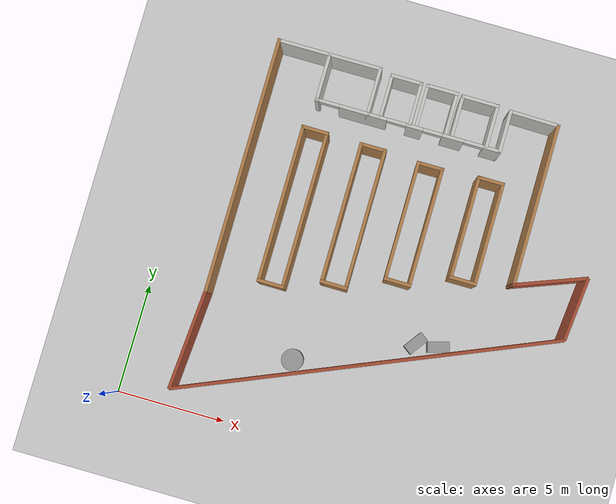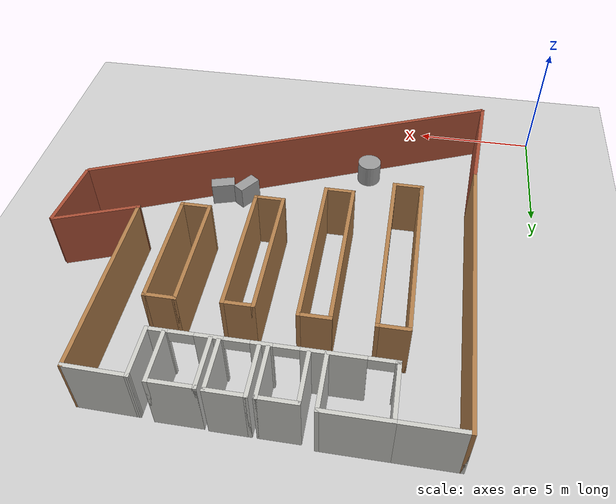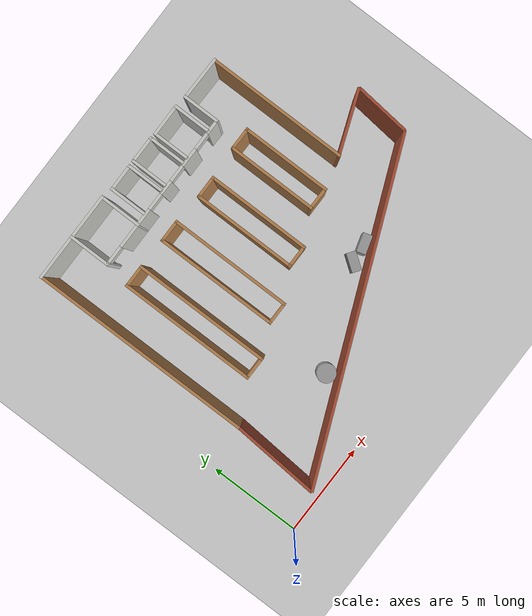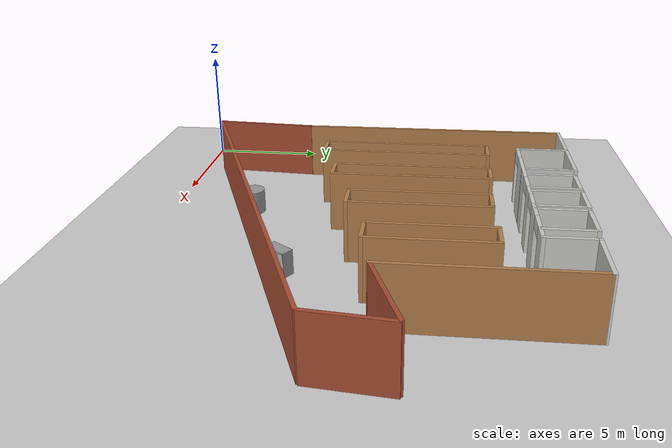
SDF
<sdf version="1.7">
 <world name="default">
  <light name="sun" type="directional">
   <pose>0 0 10 0 -0 0</pose>
   <diffuse>0.8 0.8 0.8 1</diffuse>
   <specular>0.2 0.2 0.2 1</specular>
   <attenuation>
    <range>1000</range>
    <constant>0.9</constant>
    <linear>0.01</linear>
    <quadratic>0.001</quadratic>
   </attenuation>
   <direction>-0.5 0.1 -0.9</direction>
   <spot><inner_angle>0</inner_angle><outer_angle>0</outer_angle><falloff>0</falloff></spot>
  </light>
  <model name="ground_plane">
   <static>1</static>
   <link name="link">
    <collision name="collision">
     <geometry><plane><normal>0 0 1</normal><size>100 100</size></plane></geometry>
     <surface><friction><ode><mu>0.9</mu><mu2>0.9</mu2></ode></friction></surface>
    </collision>
    <visual name="visual">
     <cast_shadows>0</cast_shadows>
     <geometry><plane><normal>0 0 1</normal><size>100 100</size></plane></geometry>
     <material>
      <script><uri>file://media/materials/scripts/gazebo.material</uri><name>Gazebo/Grey</name></script>
     </material>
    </visual>
   </link>
  </model>
  <gravity>0 0 -9.8</gravity>
  <magnetic_field>6e-06 2.3e-05 -4.2e-05</magnetic_field>
  <atmosphere type="adiabatic"/>
  <physics type="ode">
   <max_step_size>0.001</max_step_size>
   <real_time_factor>1</real_time_factor>
   <real_time_update_rate>1000</real_time_update_rate>
  </physics>
  <scene><ambient>0.4 0.4 0.4 1</ambient><background>0.7 0.7 0.7 1</background><shadows>1</shadows></scene>
  <spherical_coordinates>
   <surface_model>EARTH_WGS84</surface_model>
   <latitude_deg>0</latitude_deg>
   <longitude_deg>0</longitude_deg>
   <elevation>0</elevation>
   <heading_deg>0</heading_deg>
  </spherical_coordinates>
  <model name="tepper_lockers">
   <pose>10.68 9.00005 0 0 -0 3.14159</pose>
   <link name="Wall_1">
    <collision name="Wall_1_Collision">
     <geometry><box><size>2 0.15 2.5</size></box></geometry>
     <pose>0 0 1.25 0 -0 0</pose>
    </collision>
    <visual name="Wall_1_Visual">
     <pose>0 0 1.25 0 -0 0</pose>
     <geometry><box><size>2 0.15 2.5</size></box></geometry>
     <material>
      <script><uri>file://media/materials/scripts/gazebo.material</uri><name>Gazebo/CeilingTiled</name></script>
      <ambient>1 1 1 1</ambient>
     </material>
     <meta><layer>0</layer></meta>
    </visual>
    <pose>-2.92407 -6.92436 0 0 -0 -1.5708</pose>
   </link>
   <link name="Wall_11">
    <collision name="Wall_11_Collision">
     <geometry><box><size>4.75 0.15 2.5</size></box></geometry>
     <pose>0 0 1.25 0 -0 0</pose>
    </collision>
    <visual name="Wall_11_Visual">
     <pose>0 0 1.25 0 -0 0</pose>
     <geometry><box><size>4.75 0.15 2.5</size></box></geometry>
     <material>
      <script><uri>file://media/materials/scripts/gazebo.material</uri><name>Gazebo/Wood</name></script>
      <ambient>0.760784 0.662745 0.627451 1</ambient>
     </material>
     <meta><layer>0</layer></meta>
    </visual>
    <pose>-3.46741 -2.32422 0 0 -0 -1.5708</pose>
   </link>
   <link name="Wall_12">
    <collision name="Wall_12_Collision">
     <geometry><box><size>1.25 0.15 2.5</size></box></geometry>
     <pose>0 0 1.25 0 -0 0</pose>
    </collision>
    <visual name="Wall_12_Visual">
     <pose>0 0 1.25 0 -0 0</pose>
     <geometry><box><size>1.25 0.15 2.5</size></box></geometry>
     <material>
      <script><uri>file://media/materials/scripts/gazebo.material</uri><name>Gazebo/Wood</name></script>
      <ambient>1 1 1 1</ambient>
     </material>
     <meta><layer>0</layer></meta>
    </visual>
    <pose>-2.91741 -4.62422 0 0 -0 0</pose>
   </link>
   <link name="Wall_13">
    <collision name="Wall_13_Collision">
     <geometry><box><size>4.75 0.15 2.5</size></box></geometry>
     <pose>0 0 1.25 0 -0 0</pose>
    </collision>
    <visual name="Wall_13_Visual">
     <pose>0 0 1.25 0 -0 0</pose>
     <geometry><box><size>4.75 0.15 2.5</size></box></geometry>
     <material>
      <script><uri>file://media/materials/scripts/gazebo.material</uri><name>Gazebo/Wood</name></script>
      <ambient>0.760784 0.662745 0.627451 1</ambient>
     </material>
     <meta><layer>0</layer></meta>
    </visual>
    <pose>-2.36741 -2.32422 0 0 -0 1.5708</pose>
   </link>
   <link name="Wall_14">
    <collision name="Wall_14_Collision">
     <geometry><box><size>1.25 0.15 2.5</size></box></geometry>
     <pose>0 0 1.25 0 -0 0</pose>
    </collision>
    <visual name="Wall_14_Visual">
     <pose>0 0 1.25 0 -0 0</pose>
     <geometry><box><size>1.25 0.15 2.5</size></box></geometry>
     <material>
      <script><uri>file://media/materials/scripts/gazebo.material</uri><name>Gazebo/Wood</name></script>
      <ambient>0.760784 0.662745 0.627451 1</ambient>
     </material>
     <meta><layer>0</layer></meta>
    </visual>
    <pose>-2.91741 -0.024215 0 0 -0 3.14159</pose>
   </link>
   <link name="Wall_16">
    <collision name="Wall_16_Collision">
     <geometry><box><size>5.5 0.15 2.5</size></box></geometry>
     <pose>0 0 1.25 0 -0 0</pose>
    </collision>
    <visual name="Wall_16_Visual">
     <pose>0 0 1.25 0 -0 0</pose>
     <geometry><box><size>5.5 0.15 2.5</size></box></geometry>
     <material>
      <script><uri>file://media/materials/scripts/gazebo.material</uri><name>Gazebo/Wood</name></script>
      <ambient>0.996078 0.47451 0.0196078 1</ambient>
     </material>
     <meta><layer>0</layer></meta>
    </visual>
    <pose>-0.703981 -1.8422 0 0 -0 -1.5708</pose>
   </link>
   <link name="Wall_17">
    <collision name="Wall_17_Collision">
     <geometry><box><size>1.25 0.15 2.5</size></box></geometry>
     <pose>0 0 1.25 0 -0 0</pose>
    </collision>
    <visual name="Wall_17_Visual">
     <pose>0 0 1.25 0 -0 0</pose>
     <geometry><box><size>1.25 0.15 2.5</size></box></geometry>
     <material>
      <script><uri>file://media/materials/scripts/gazebo.material</uri><name>Gazebo/Wood</name></script>
      <ambient>0.996078 0.47451 0.0196078 1</ambient>
     </material>
     <meta><layer>0</layer></meta>
    </visual>
    <pose>-0.153981 -4.5172 0 0 -0 0</pose>
   </link>
   <link name="Wall_18">
    <collision name="Wall_18_Collision">
     <geometry><box><size>5.5 0.15 2.5</size></box></geometry>
     <pose>0 0 1.25 0 -0 0</pose>
    </collision>
    <visual name="Wall_18_Visual">
     <pose>0 0 1.25 0 -0 0</pose>
     <geometry><box><size>5.5 0.15 2.5</size></box></geometry>
     <material>
      <script><uri>file://media/materials/scripts/gazebo.material</uri><name>Gazebo/Wood</name></script>
      <ambient>0.996078 0.47451 0.0196078 1</ambient>
     </material>
     <meta><layer>0</layer></meta>
    </visual>
    <pose>0.396019 -1.8422 0 0 -0 1.5708</pose>
   </link>
   <link name="Wall_19">
    <collision name="Wall_19_Collision">
     <geometry><box><size>1.25 0.15 2.5</size></box></geometry>
     <pose>0 0 1.25 0 -0 0</pose>
    </collision>
    <visual name="Wall_19_Visual">
     <pose>0 0 1.25 0 -0 0</pose>
     <geometry><box><size>1.25 0.15 2.5</size></box></geometry>
     <material>
      <script><uri>file://media/materials/scripts/gazebo.material</uri><name>Gazebo/Wood</name></script>
      <ambient>0.996078 0.47451 0.0196078 1</ambient>
     </material>
     <meta><layer>0</layer></meta>
    </visual>
    <pose>-0.153981 0.832798 0 0 -0 3.14159</pose>
   </link>
   <link name="Wall_2">
    <collision name="Wall_2_Collision">
     <geometry><box><size>2.3526 0.15 2.5</size></box></geometry>
     <pose>0 0 1.25 0 -0 0</pose>
    </collision>
    <visual name="Wall_2_Visual">
     <pose>0 0 1.25 0 -0 0</pose>
     <geometry><box><size>2.3526 0.15 2.5</size></box></geometry>
     <material>
      <script><uri>file://media/materials/scripts/gazebo.material</uri><name>Gazebo/CeilingTiled</name></script>
      <ambient>1 1 1 1</ambient>
     </material>
     <meta><layer>0</layer></meta>
    </visual>
    <pose>-4.02523 -7.8323 0 0 -0 3.1261</pose>
   </link>
   <link name="Wall_28">
    <collision name="Wall_28_Collision">
     <geometry><box><size>7.25 0.15 2.5</size></box></geometry>
     <pose>0 0 1.25 0 -0 0</pose>
    </collision>
    <visual name="Wall_28_Visual">
     <pose>0 0 1.25 0 -0 0</pose>
     <geometry><box><size>7.25 0.15 2.5</size></box></geometry>
     <material>
      <script><uri>file://media/materials/scripts/gazebo.material</uri><name>Gazebo/Wood</name></script>
      <ambient>1 1 1 1</ambient>
     </material>
     <meta><layer>0</layer></meta>
    </visual>
    <pose>4.66547 -1.10908 0 0 -0 1.5708</pose>
   </link>
   <link name="Wall_29">
    <collision name="Wall_29_Collision">
     <geometry><box><size>1.25 0.15 2.5</size></box></geometry>
     <pose>0 0 1.25 0 -0 0</pose>
    </collision>
    <visual name="Wall_29_Visual">
     <pose>0 0 1.25 0 -0 0</pose>
     <geometry><box><size>1.25 0.15 2.5</size></box></geometry>
     <material>
      <script><uri>file://media/materials/scripts/gazebo.material</uri><name>Gazebo/Wood</name></script>
      <ambient>1 1 1 1</ambient>
     </material>
     <meta><layer>0</layer></meta>
    </visual>
    <pose>5.21547 2.44092 0 0 -0 0</pose>
   </link>
   <link name="Wall_3">
    <collision name="Wall_3_Collision">
     <geometry><box><size>7.5 0.15 2.5</size></box></geometry>
     <pose>0 0 1.25 0 -0 0</pose>
    </collision>
    <visual name="Wall_3_Visual">
     <pose>0 0 1.25 0 -0 0</pose>
     <geometry><box><size>7.5 0.15 2.5</size></box></geometry>
     <material>
      <script><uri>file://media/materials/scripts/gazebo.material</uri><name>Gazebo/Wood</name></script>
      <ambient>1 1 1 1</ambient>
     </material>
     <meta><layer>0</layer></meta>
    </visual>
    <pose>-5.1264 -4.14025 0 0 -0 1.5708</pose>
   </link>
   <link name="Wall_32">
    <collision name="Wall_32_Collision">
     <geometry><box><size>7.25 0.15 2.5</size></box></geometry>
     <pose>0 0 1.25 0 -0 0</pose>
    </collision>
    <visual name="Wall_32_Visual">
     <pose>0 0 1.25 0 -0 0</pose>
     <geometry><box><size>7.25 0.15 2.5</size></box></geometry>
     <material>
      <script><uri>file://media/materials/scripts/gazebo.material</uri><name>Gazebo/Wood</name></script>
      <ambient>1 1 1 1</ambient>
     </material>
     <meta><layer>0</layer></meta>
    </visual>
    <pose>5.76547 -1.10908 0 0 -0 -1.5708</pose>
   </link>
   <link name="Wall_33">
    <collision name="Wall_33_Collision">
     <geometry><box><size>1.25 0.15 2.5</size></box></geometry>
     <pose>0 0 1.25 0 -0 0</pose>
    </collision>
    <visual name="Wall_33_Visual">
     <pose>0 0 1.25 0 -0 0</pose>
     <geometry><box><size>1.25 0.15 2.5</size></box></geometry>
     <material>
      <script><uri>file://media/materials/scripts/gazebo.material</uri><name>Gazebo/Wood</name></script>
      <ambient>1 1 1 1</ambient>
     </material>
     <meta><layer>0</layer></meta>
    </visual>
    <pose>5.21547 -4.65908 0 0 -0 3.14159</pose>
   </link>
   <link name="Wall_35">
    <collision name="Wall_35_Collision">
     <geometry><box><size>1.25 0.15 2.5</size></box></geometry>
     <pose>0 0 1.25 0 -0 0</pose>
    </collision>
    <visual name="Wall_35_Visual">
     <pose>0 0 1.25 0 -0 0</pose>
     <geometry><box><size>1.25 0.15 2.5</size></box></geometry>
     <material>
      <script><uri>file://media/materials/scripts/gazebo.material</uri><name>Gazebo/Wood</name></script>
      <ambient>0.435294 0.796078 0.67451 1</ambient>
     </material>
     <meta><layer>0</layer></meta>
    </visual>
    <pose>2.52387 -4.6241 0 0 -0 3.14159</pose>
   </link>
   <link name="Wall_36">
    <collision name="Wall_36_Collision">
     <geometry><box><size>6.5 0.15 2.5</size></box></geometry>
     <pose>0 0 1.25 0 -0 0</pose>
    </collision>
    <visual name="Wall_36_Visual">
     <pose>0 0 1.25 0 -0 0</pose>
     <geometry><box><size>6.5 0.15 2.5</size></box></geometry>
     <material>
      <script><uri>file://media/materials/scripts/gazebo.material</uri><name>Gazebo/Wood</name></script>
      <ambient>0.435294 0.796078 0.67451 1</ambient>
     </material>
     <meta><layer>0</layer></meta>
    </visual>
    <pose>1.97387 -1.4491 0 0 -0 1.5708</pose>
   </link>
   <link name="Wall_37">
    <collision name="Wall_37_Collision">
     <geometry><box><size>1.25 0.15 2.5</size></box></geometry>
     <pose>0 0 1.25 0 -0 0</pose>
    </collision>
    <visual name="Wall_37_Visual">
     <pose>0 0 1.25 0 -0 0</pose>
     <geometry><box><size>1.25 0.15 2.5</size></box></geometry>
     <material>
      <script><uri>file://media/materials/scripts/gazebo.material</uri><name>Gazebo/Wood</name></script>
      <ambient>0.435294 0.796078 0.67451 1</ambient>
     </material>
     <meta><layer>0</layer></meta>
    </visual>
    <pose>2.52387 1.7259 0 0 -0 0</pose>
   </link>
   <link name="Wall_38">
    <collision name="Wall_38_Collision">
     <geometry><box><size>6.5 0.15 2.5</size></box></geometry>
     <pose>0 0 1.25 0 -0 0</pose>
    </collision>
    <visual name="Wall_38_Visual">
     <pose>0 0 1.25 0 -0 0</pose>
     <geometry><box><size>6.5 0.15 2.5</size></box></geometry>
     <material>
      <script><uri>file://media/materials/scripts/gazebo.material</uri><name>Gazebo/Wood</name></script>
      <ambient>0.435294 0.796078 0.67451 1</ambient>
     </material>
     <meta><layer>0</layer></meta>
    </visual>
    <pose>3.07387 -1.4491 0 0 -0 -1.5708</pose>
   </link>
   <link name="Wall_48">
    <collision name="Wall_48_Collision">
     <geometry><box><size>2.25 0.15 2.5</size></box></geometry>
     <pose>0 0 1.25 0 -0 0</pose>
    </collision>
    <visual name="Wall_48_Visual">
     <pose>0 0 1.25 0 -0 0</pose>
     <geometry><box><size>2.25 0.15 2.5</size></box></geometry>
     <material>
      <script><uri>file://media/materials/scripts/gazebo.material</uri><name>Gazebo/CeilingTiled</name></script>
      <ambient>1 1 1 1</ambient>
     </material>
     <meta><layer>0</layer></meta>
    </visual>
    <pose>5.52593 -7.04936 0 0 -0 -1.5708</pose>
   </link>
   <link name="Wall_49">
    <collision name="Wall_49_Collision">
     <geometry><box><size>2.5 0.15 2.5</size></box></geometry>
     <pose>0 0 1.25 0 -0 0</pose>
    </collision>
    <visual name="Wall_49_Visual">
     <pose>0 0 1.25 0 -0 0</pose>
     <geometry><box><size>2.5 0.15 2.5</size></box></geometry>
     <material>
      <script><uri>file://media/materials/scripts/gazebo.material</uri><name>Gazebo/CeilingTiled</name></script>
      <ambient>1 1 1 1</ambient>
     </material>
     <meta><layer>0</layer></meta>
    </visual>
    <pose>6.70093 -8.09936 0 0 -0 0</pose>
   </link>
   <link name="Wall_50">
    <collision name="Wall_50_Collision">
     <geometry><box><size>11.75 0.15 2.5</size></box></geometry>
     <pose>0 0 1.25 0 -0 0</pose>
    </collision>
    <visual name="Wall_50_Visual">
     <pose>0 0 1.25 0 -0 0</pose>
     <geometry><box><size>11.75 0.15 2.5</size></box></geometry>
     <material>
      <script><uri>file://media/materials/scripts/gazebo.material</uri><name>Gazebo/Wood</name></script>
      <ambient>1 1 1 1</ambient>
     </material>
     <meta><layer>0</layer></meta>
    </visual>
    <pose>7.87593 -2.29936 0 0 -0 1.5708</pose>
   </link>
   <link name="Wall_52">
    <collision name="Wall_52_Collision">
     <geometry><box><size>2 0.15 2.5</size></box></geometry>
     <pose>0 0 1.25 0 -0 0</pose>
    </collision>
    <visual name="Wall_52_Visual">
     <pose>0 0 1.25 0 -0 0</pose>
     <geometry><box><size>2 0.15 2.5</size></box></geometry>
     <material>
      <script><uri>file://media/materials/scripts/gazebo.material</uri><name>Gazebo/CeilingTiled</name></script>
      <ambient>0.760784 0.662745 0.627451 1</ambient>
     </material>
     <meta><layer>0</layer></meta>
    </visual>
    <pose>-2.29829 -7.00102 0 0 -0 1.5708</pose>
   </link>
   <link name="Wall_54">
    <collision name="Wall_54_Collision">
     <geometry><box><size>1.75 0.15 2.5</size></box></geometry>
     <pose>0 0 1.25 0 -0 0</pose>
    </collision>
    <visual name="Wall_54_Visual">
     <pose>0 0 1.25 0 -0 0</pose>
     <geometry><box><size>1.75 0.15 2.5</size></box></geometry>
     <material>
      <script><uri>file://media/materials/scripts/gazebo.material</uri><name>Gazebo/CeilingTiled</name></script>
      <ambient>0.760784 0.662745 0.627451 1</ambient>
     </material>
     <meta><layer>0</layer></meta>
    </visual>
    <pose>-1.49829 -7.92602 0 0 -0 0</pose>
   </link>
   <link name="Wall_55">
    <collision name="Wall_55_Collision">
     <geometry><box><size>2 0.15 2.5</size></box></geometry>
     <pose>0 0 1.25 0 -0 0</pose>
    </collision>
    <visual name="Wall_55_Visual">
     <pose>0 0 1.25 0 -0 0</pose>
     <geometry><box><size>2 0.15 2.5</size></box></geometry>
     <material>
      <script><uri>file://media/materials/scripts/gazebo.material</uri><name>Gazebo/CeilingTiled</name></script>
      <ambient>0.760784 0.662745 0.627451 1</ambient>
     </material>
     <meta><layer>0</layer></meta>
    </visual>
    <pose>-0.698288 -7.00102 0 0 -0 1.5708</pose>
   </link>
   <link name="Wall_58">
    <collision name="Wall_58_Collision">
     <geometry><box><size>2 0.15 2.5</size></box></geometry>
     <pose>0 0 1.25 0 -0 0</pose>
    </collision>
    <visual name="Wall_58_Visual">
     <pose>0 0 1.25 0 -0 0</pose>
     <geometry><box><size>2 0.15 2.5</size></box></geometry>
     <material>
      <script><uri>file://media/materials/scripts/gazebo.material</uri><name>Gazebo/CeilingTiled</name></script>
      <ambient>0.996078 0.47451 0.0196078 1</ambient>
     </material>
     <meta><layer>0</layer></meta>
    </visual>
    <pose>-0.407929 -7.03628 0 0 -0 -1.5708</pose>
   </link>
   <link name="Wall_63">
    <collision name="Wall_63_Collision">
     <geometry><box><size>2 0.15 2.5</size></box></geometry>
     <pose>0 0 1.25 0 -0 0</pose>
    </collision>
    <visual name="Wall_63_Visual">
     <pose>0 0 1.25 0 -0 0</pose>
     <geometry><box><size>2 0.15 2.5</size></box></geometry>
     <material>
      <script><uri>file://media/materials/scripts/gazebo.material</uri><name>Gazebo/CeilingTiled</name></script>
      <ambient>0.435294 0.796078 0.67451 1</ambient>
     </material>
     <meta><layer>0</layer></meta>
    </visual>
    <pose>1.24046 -7.03628 0 0 -0 -1.5708</pose>
   </link>
   <link name="Wall_64">
    <collision name="Wall_64_Collision">
     <geometry><box><size>1.5 0.15 2.5</size></box></geometry>
     <pose>0 0 1.25 0 -0 0</pose>
    </collision>
    <visual name="Wall_64_Visual">
     <pose>0 0 1.25 0 -0 0</pose>
     <geometry><box><size>1.5 0.15 2.5</size></box></geometry>
     <material>
      <script><uri>file://media/materials/scripts/gazebo.material</uri><name>Gazebo/CeilingTiled</name></script>
      <ambient>0.435294 0.796078 0.67451 1</ambient>
     </material>
     <meta><layer>0</layer></meta>
    </visual>
    <pose>1.91546 -7.96128 0 0 -0 0</pose>
   </link>
   <link name="Wall_65">
    <collision name="Wall_65_Collision">
     <geometry><box><size>2 0.15 2.5</size></box></geometry>
     <pose>0 0 1.25 0 -0 0</pose>
    </collision>
    <visual name="Wall_65_Visual">
     <pose>0 0 1.25 0 -0 0</pose>
     <geometry><box><size>2 0.15 2.5</size></box></geometry>
     <material>
      <script><uri>file://media/materials/scripts/gazebo.material</uri><name>Gazebo/CeilingTiled</name></script>
      <ambient>0.435294 0.796078 0.67451 1</ambient>
     </material>
     <meta><layer>0</layer></meta>
    </visual>
    <pose>2.59046 -7.03628 0 0 -0 1.5708</pose>
   </link>
   <link name="Wall_67">
    <collision name="Wall_67_Collision">
     <geometry><box><size>1.5 0.15 2.5</size></box></geometry>
     <pose>0 0 1.25 0 -0 0</pose>
    </collision>
    <visual name="Wall_67_Visual">
     <pose>0 0 1.25 0 -0 0</pose>
     <geometry><box><size>1.5 0.15 2.5</size></box></geometry>
     <material>
      <script><uri>file://media/materials/scripts/gazebo.material</uri><name>Gazebo/CeilingTiled</name></script>
      <ambient>0.996078 0.47451 0.0196078 1</ambient>
     </material>
     <meta><layer>0</layer></meta>
    </visual>
    <pose>0.267071 -7.96128 0 0 -0 0</pose>
   </link>
   <link name="Wall_68">
    <collision name="Wall_68_Collision">
     <geometry><box><size>2 0.15 2.5</size></box></geometry>
     <pose>0 0 1.25 0 -0 0</pose>
    </collision>
    <visual name="Wall_68_Visual">
     <pose>0 0 1.25 0 -0 0</pose>
     <geometry><box><size>2 0.15 2.5</size></box></geometry>
     <material>
      <script><uri>file://media/materials/scripts/gazebo.material</uri><name>Gazebo/CeilingTiled</name></script>
      <ambient>0.996078 0.47451 0.0196078 1</ambient>
     </material>
     <meta><layer>0</layer></meta>
    </visual>
    <pose>0.942071 -7.03628 0 0 -0 1.5708</pose>
   </link>
   <link name="Wall_7">
    <collision name="Wall_7_Collision">
     <geometry><box><size>17.4995 0.15 2.5</size></box></geometry>
     <pose>0 0 1.25 0 -0 0</pose>
    </collision>
    <visual name="Wall_7_Visual">
     <pose>0 0 1.25 0 -0 0</pose>
     <geometry><box><size>17.4995 0.15 2.5</size></box></geometry>
     <material>
      <script><uri>file://media/materials/scripts/gazebo.material</uri><name>Gazebo/Bricks</name></script>
      <ambient>1 1 1 1</ambient>
     </material>
     <meta><layer>0</layer></meta>
    </visual>
    <pose>0.145826 4.69803 0 0 -0 0.399993</pose>
   </link>
   <link name="Wall_70">
    <collision name="Wall_70_Collision">
     <geometry><box><size>2.5 0.15 2.5</size></box></geometry>
     <pose>0 0 1.25 0 -0 0</pose>
    </collision>
    <visual name="Wall_70_Visual">
     <pose>0 0 1.25 0 -0 0</pose>
     <geometry><box><size>2.5 0.15 2.5</size></box></geometry>
     <material>
      <script><uri>file://media/materials/scripts/gazebo.material</uri><name>Gazebo/CeilingTiled</name></script>
      <ambient>1 1 1 1</ambient>
     </material>
     <meta><layer>0</layer></meta>
    </visual>
    <pose>4.35093 -8.09936 0 0 -0 3.14159</pose>
   </link>
   <link name="Wall_71">
    <collision name="Wall_71_Collision">
     <geometry><box><size>2.25 0.15 2.5</size></box></geometry>
     <pose>0 0 1.25 0 -0 0</pose>
    </collision>
    <visual name="Wall_71_Visual">
     <pose>0 0 1.25 0 -0 0</pose>
     <geometry><box><size>2.25 0.15 2.5</size></box></geometry>
     <material>
      <script><uri>file://media/materials/scripts/gazebo.material</uri><name>Gazebo/CeilingTiled</name></script>
      <ambient>1 1 1 1</ambient>
     </material>
     <meta><layer>0</layer></meta>
    </visual>
    <pose>3.17593 -7.04936 0 0 -0 1.5708</pose>
   </link>
   <link name="Wall_73">
    <pose>1.30093 -5.99936 0 0 -0 0</pose>
    <visual name="Wall_73_Visual_0">
     <pose>-3.88746 0 1.25 0 -0 0</pose>
     <geometry><box><size>0.825085 0.15 2.5</size></box></geometry>
     <material>
      <script><uri>file://media/materials/scripts/gazebo.material</uri><name>Gazebo/CeilingTiled</name></script>
      <ambient>1 1 1 1</ambient>
     </material>
     <meta><layer>0</layer></meta>
    </visual>
    <collision name="Wall_73_Collision_0">
     <geometry><box><size>0.825085 0.15 2.5</size></box></geometry>
     <pose>-3.88746 0 1.25 0 -0 0</pose>
    </collision>
    <visual name="Wall_73_Visual_1">
     <pose>-2.0769 0 1.25 0 -0 0</pose>
     <geometry><box><size>0.99603 0.15 2.5</size></box></geometry>
     <material>
      <script><uri>file://media/materials/scripts/gazebo.material</uri><name>Gazebo/CeilingTiled</name></script>
      <ambient>1 1 1 1</ambient>
     </material>
     <meta><layer>0</layer></meta>
    </visual>
    <collision name="Wall_73_Collision_1">
     <geometry><box><size>0.99603 0.15 2.5</size></box></geometry>
     <pose>-2.0769 0 1.25 0 -0 0</pose>
    </collision>
    <visual name="Wall_73_Visual_2">
     <pose>-0.298554 0 1.25 0 -0 0</pose>
     <geometry><box><size>0.760661 0.15 2.5</size></box></geometry>
     <material>
      <script><uri>file://media/materials/scripts/gazebo.material</uri><name>Gazebo/CeilingTiled</name></script>
      <ambient>1 1 1 1</ambient>
     </material>
     <meta><layer>0</layer></meta>
    </visual>
    <collision name="Wall_73_Collision_2">
     <geometry><box><size>0.760661 0.15 2.5</size></box></geometry>
     <pose>-0.298554 0 1.25 0 -0 0</pose>
    </collision>
    <visual name="Wall_73_Visual_3">
     <pose>2.08783 0 1.25 0 -0 0</pose>
     <geometry><box><size>2.21211 0.15 2.5</size></box></geometry>
     <material>
      <script><uri>file://media/materials/scripts/gazebo.material</uri><name>Gazebo/CeilingTiled</name></script>
      <ambient>1 1 1 1</ambient>
     </material>
     <meta><layer>0</layer></meta>
    </visual>
    <collision name="Wall_73_Collision_3">
     <geometry><box><size>2.21211 0.15 2.5</size></box></geometry>
     <pose>2.08783 0 1.25 0 -0 0</pose>
    </collision>
    <visual name="Wall_73_Visual_4">
     <pose>4.19694 0 1.25 0 -0 0</pose>
     <geometry><box><size>0.206118 0.15 2.5</size></box></geometry>
     <material>
      <script><uri>file://media/materials/scripts/gazebo.material</uri><name>Gazebo/CeilingTiled</name></script>
      <ambient>1 1 1 1</ambient>
     </material>
     <meta><layer>0</layer></meta>
    </visual>
    <collision name="Wall_73_Collision_4">
     <geometry><box><size>0.206118 0.15 2.5</size></box></geometry>
     <pose>4.19694 0 1.25 0 -0 0</pose>
    </collision>
    <visual name="Wall_73_Visual_5">
     <pose>-3.02492 0 2.25 0 -0 0</pose>
     <geometry><box><size>0.9 0.15 0.5</size></box></geometry>
     <material>
      <script><uri>file://media/materials/scripts/gazebo.material</uri><name>Gazebo/CeilingTiled</name></script>
      <ambient>1 1 1 1</ambient>
     </material>
     <meta><layer>0</layer></meta>
    </visual>
    <collision name="Wall_73_Collision_5">
     <geometry><box><size>0.9 0.15 0.5</size></box></geometry>
     <pose>-3.02492 0 2.25 0 -0 0</pose>
    </collision>
    <visual name="Wall_73_Visual_6">
     <pose>-1.12888 0 2.25 0 -0 0</pose>
     <geometry><box><size>0.9 0.15 0.5</size></box></geometry>
     <material>
      <script><uri>file://media/materials/scripts/gazebo.material</uri><name>Gazebo/CeilingTiled</name></script>
      <ambient>1 1 1 1</ambient>
     </material>
     <meta><layer>0</layer></meta>
    </visual>
    <collision name="Wall_73_Collision_6">
     <geometry><box><size>0.9 0.15 0.5</size></box></geometry>
     <pose>-1.12888 0 2.25 0 -0 0</pose>
    </collision>
    <visual name="Wall_73_Visual_7">
     <pose>0.531777 0 2.25 0 -0 0</pose>
     <geometry><box><size>0.9 0.15 0.5</size></box></geometry>
     <material>
      <script><uri>file://media/materials/scripts/gazebo.material</uri><name>Gazebo/CeilingTiled</name></script>
      <ambient>1 1 1 1</ambient>
     </material>
     <meta><layer>0</layer></meta>
    </visual>
    <collision name="Wall_73_Collision_7">
     <geometry><box><size>0.9 0.15 0.5</size></box></geometry>
     <pose>0.531777 0 2.25 0 -0 0</pose>
    </collision>
    <visual name="Wall_73_Visual_8">
     <pose>3.64388 0 2.25 0 -0 0</pose>
     <geometry><box><size>0.9 0.15 0.5</size></box></geometry>
     <material>
      <script><uri>file://media/materials/scripts/gazebo.material</uri><name>Gazebo/CeilingTiled</name></script>
      <ambient>1 1 1 1</ambient>
     </material>
     <meta><layer>0</layer></meta>
    </visual>
    <collision name="Wall_73_Collision_8">
     <geometry><box><size>0.9 0.15 0.5</size></box></geometry>
     <pose>3.64388 0 2.25 0 -0 0</pose>
    </collision>
   </link>
   <link name="Wall_9">
    <collision name="Wall_9_Collision">
     <geometry><box><size>3.37321 0.15 2.5</size></box></geometry>
     <pose>0 0 1.25 0 -0 0</pose>
    </collision>
    <visual name="Wall_9_Visual">
     <pose>0 0 1.25 0 -0 0</pose>
     <geometry><box><size>3.37321 0.15 2.5</size></box></geometry>
     <material>
      <script><uri>file://media/materials/scripts/gazebo.material</uri><name>Gazebo/Bricks</name></script>
      <ambient>1 1 1 1</ambient>
     </material>
     <meta><layer>0</layer></meta>
    </visual>
    <pose>-6.63183 -1.04053 0 0 -0 -2.77658</pose>
   </link>
   <link name="Wall_lower_left_closure">
    <collision name="Wall_lower_left_closure_Collision">
     <geometry><box><size>4.54158 0.15 2.5</size></box></geometry>
     <pose>0 0 1.25 0 -0 0</pose>
    </collision>
    <visual name="Wall_lower_left_closure_Visual">
     <pose>0 0 1.25 0 -0 0</pose>
     <geometry><box><size>4.54158 0.15 2.5</size></box></geometry>
     <material>
      <script><uri>file://media/materials/scripts/gazebo.material</uri><name>Gazebo/Bricks</name></script>
      <ambient>1 1 1 1</ambient>
     </material>
     <meta><layer>0</layer></meta>
    </visual>
    <pose>8.040406 5.840463 0 0 -0 1.498292</pose>
   </link>
   <link name="Wall_lower_right_closure">
    <collision name="Wall_lower_right_closure_Collision">
     <geometry><box><size>2.94806 0.15 2.5</size></box></geometry>
     <pose>0 0 1.25 0 -0 0</pose>
    </collision>
    <visual name="Wall_lower_right_closure_Visual">
     <pose>0 0 1.25 0 -0 0</pose>
     <geometry><box><size>2.94806 0.15 2.5</size></box></geometry>
     <material>
      <script><uri>file://media/materials/scripts/gazebo.material</uri><name>Gazebo/Bricks</name></script>
      <ambient>1 1 1 1</ambient>
     </material>
     <meta><layer>0</layer></meta>
    </visual>
    <pose>-8.060286 -0.175905 0 0 -0 1.470880</pose>
   </link>
   <static>1</static>
  </model>
  <model name="unit_cylinder">
   <pose>7.26381 3.57655 0.499993 -3e-06 -1e-06 1.1e-05</pose>
   <link name="link">
    <inertial>
     <mass>1</mass>
     <inertia><ixx>0.145833</ixx><ixy>0</ixy><ixz>0</ixz><iyy>0.145833</iyy><iyz>0</iyz><izz>0.125</izz></inertia>
    </inertial>
    <collision name="collision">
     <geometry><cylinder><radius>0.5</radius><length>1</length></cylinder></geometry>
    </collision>
    <visual name="visual">
     <geometry><cylinder><radius>0.5</radius><length>1</length></cylinder></geometry>
     <material>
      <script><name>Gazebo/Grey</name><uri>file://media/materials/scripts/gazebo.material</uri></script>
     </material>
    </visual>
   </link>
  </model>
  <model name="half_box">
   <link name="link">
    <inertial>
     <mass>1</mass>
     <inertia>
      <ixx>0.166667</ixx>
      <ixy>0</ixy>
      <ixz>0</ixz>
      <iyy>0.166667</iyy>
      <iyz>0</iyz>
      <izz>0.166667</izz>
     </inertia>
    </inertial>
    <visual name="visual">
     <geometry><box><size>1 0.5 1</size></box></geometry>
     <material>
      <script><name>Gazebo/Grey</name><uri>file://media/materials/scripts/gazebo.material</uri></script>
      <shader type="pixel"><normal_map>__default__</normal_map></shader>
      <ambient>0.3 0.3 0.3 1</ambient>
      <diffuse>0.7 0.7 0.7 1</diffuse>
      <specular>0.01 0.01 0.01 1</specular>
      <emissive>0 0 0 1</emissive>
     </material>
    </visual>
    <collision name="collision">
     <geometry><box><size>1 0.5 1</size></box></geometry>
     <surface>
      <friction>
       <ode><mu>1</mu><mu2>1</mu2><fdir1>0 0 0</fdir1><slip1>0</slip1><slip2>0</slip2></ode>
       <torsional>
        <coefficient>1</coefficient>
        <patch_radius>0</patch_radius>
        <surface_radius>0</surface_radius>
        <use_patch_radius>1</use_patch_radius>
        <ode><slip>0</slip></ode>
       </torsional>
      </friction>
      <bounce><restitution_coefficient>0</restitution_coefficient><threshold>1e+06</threshold></bounce>
      <contact>
       <collide_without_contact>0</collide_without_contact>
       <collide_without_contact_bitmask>1</collide_without_contact_bitmask>
       <collide_bitmask>1</collide_bitmask>
       <ode>
        <soft_cfm>0</soft_cfm>
        <soft_erp>0.2</soft_erp>
        <kp>1e+13</kp>
        <kd>1</kd>
        <max_vel>0.01</max_vel>
        <min_depth>0</min_depth>
       </ode>
       <bullet>
        <split_impulse>1</split_impulse>
        <split_impulse_penetration_threshold>-0.01</split_impulse_penetration_threshold>
        <soft_cfm>0</soft_cfm>
        <soft_erp>0.2</soft_erp>
        <kp>1e+13</kp>
        <kd>1</kd>
       </bullet>
      </contact>
     </surface>
    </collision>
   </link>
   <static>0</static>
   <pose>13.4421 5.94117 0.5 0 -0 0.292075</pose>
  </model>
  <model name="half_box_clone">
   <link name="link">
    <inertial>
     <mass>1</mass>
     <inertia>
      <ixx>0.166667</ixx>
      <ixy>0</ixy>
      <ixz>0</ixz>
      <iyy>0.166667</iyy>
      <iyz>0</iyz>
      <izz>0.166667</izz>
     </inertia>
    </inertial>
    <visual name="visual">
     <geometry><box><size>1 0.5 1</size></box></geometry>
     <material>
      <script><name>Gazebo/Grey</name><uri>file://media/materials/scripts/gazebo.material</uri></script>
      <shader type="pixel"><normal_map>__default__</normal_map></shader>
      <ambient>0.3 0.3 0.3 1</ambient>
      <diffuse>0.7 0.7 0.7 1</diffuse>
      <specular>0.01 0.01 0.01 1</specular>
      <emissive>0 0 0 1</emissive>
     </material>
    </visual>
    <collision name="collision">
     <geometry><box><size>1 0.5 1</size></box></geometry>
     <surface>
      <friction>
       <ode><mu>1</mu><mu2>1</mu2><fdir1>0 0 0</fdir1><slip1>0</slip1><slip2>0</slip2></ode>
       <torsional>
        <coefficient>1</coefficient>
        <patch_radius>0</patch_radius>
        <surface_radius>0</surface_radius>
        <use_patch_radius>1</use_patch_radius>
        <ode><slip>0</slip></ode>
       </torsional>
      </friction>
      <bounce><restitution_coefficient>0</restitution_coefficient><threshold>1e+06</threshold></bounce>
      <contact>
       <collide_without_contact>0</collide_without_contact>
       <collide_without_contact_bitmask>1</collide_without_contact_bitmask>
       <collide_bitmask>1</collide_bitmask>
       <ode>
        <soft_cfm>0</soft_cfm>
        <soft_erp>0.2</soft_erp>
        <kp>1e+13</kp>
        <kd>1</kd>
        <max_vel>0.01</max_vel>
        <min_depth>0</min_depth>
       </ode>
       <bullet>
        <split_impulse>1</split_impulse>
        <split_impulse_penetration_threshold>-0.01</split_impulse_penetration_threshold>
        <soft_cfm>0</soft_cfm>
        <soft_erp>0.2</soft_erp>
        <kp>1e+13</kp>
        <kd>1</kd>
       </bullet>
      </contact>
     </surface>
    </collision>
   </link>
   <static>0</static>
   <pose>12.4208 5.8178 0.5 0 -0 0.95067</pose>
  </model>
 </world>
</sdf>
